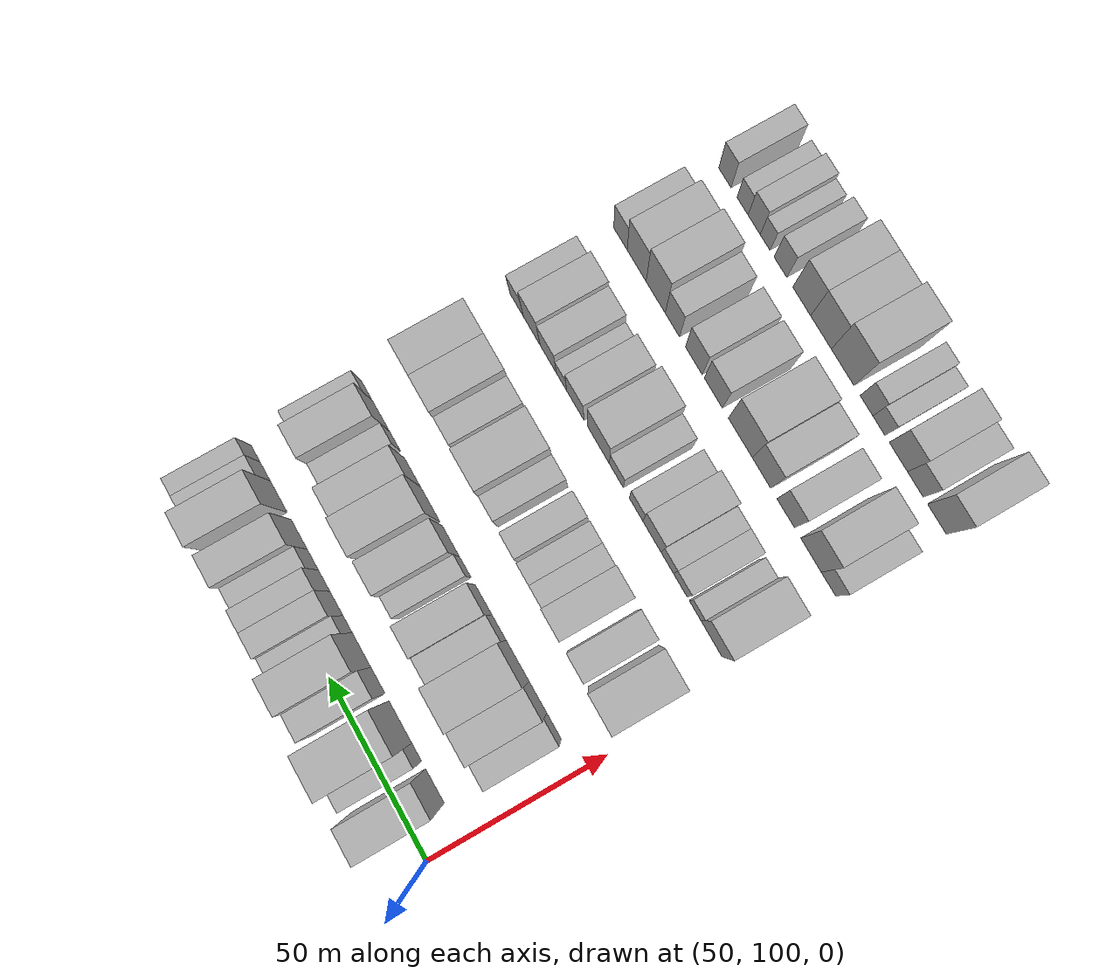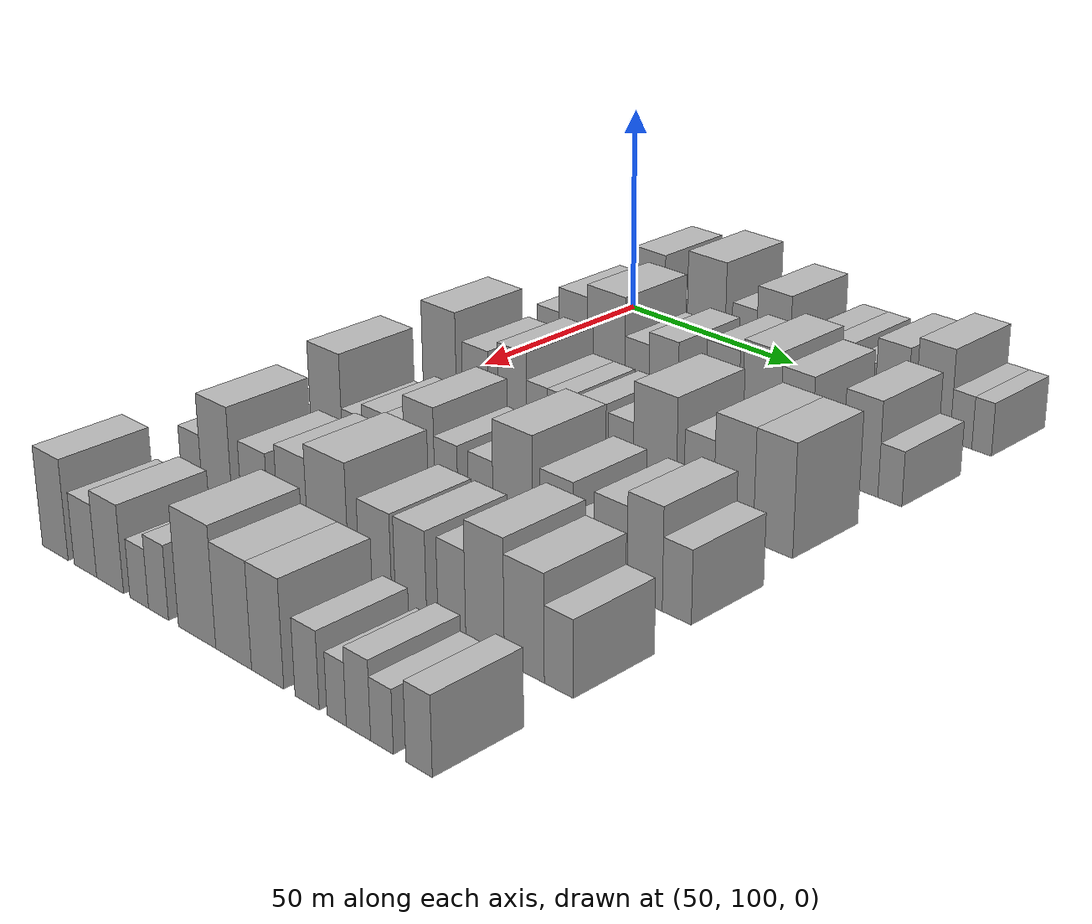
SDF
<sdf version="1.6">
 <world name="default">
  <model name="building_74">
   <static>1</static>
   <pose>50.0000 114.4343 0 0.000000 0.000000 0.000000</pose>
   <link name="link">
    <pose>0 0 10.50 0 0 0</pose>
    <collision name="collision"><geometry><box><size>20.0000 9.3708 21.0000</size></box></geometry></collision>
    <visual name="visual">
     <cast_shadows>0</cast_shadows>
     <geometry><box><size>20.0000 9.3708 21.0000</size></box></geometry>
     <material>
      <script>
       <uri>model://HANNAS_wall/materials/scripts</uri>
       <uri>model://HANNAS_wall/materials/textures</uri>
       <name>vrc/HANNAS_wall</name>
      </script>
     </material>
    </visual>
   </link>
  </model>
  <model name="building_75">
   <static>1</static>
   <pose>50.0000 123.6273 0 0.000000 0.000000 0.000000</pose>
   <link name="link">
    <pose>0 0 6.00 0 0 0</pose>
    <collision name="collision"><geometry><box><size>20.0000 5.0151 12.0000</size></box></geometry></collision>
    <visual name="visual">
     <cast_shadows>0</cast_shadows>
     <geometry><box><size>20.0000 5.0151 12.0000</size></box></geometry>
     <material>
      <script>
       <uri>model://HANNAS_wall/materials/scripts</uri>
       <uri>model://HANNAS_wall/materials/textures</uri>
       <name>vrc/HANNAS_wall</name>
      </script>
     </material>
    </visual>
   </link>
  </model>
  <model name="building_76">
   <static>1</static>
   <pose>50.0000 131.9519 0 0.000000 0.000000 0.000000</pose>
   <link name="link">
    <pose>0 0 12.00 0 0 0</pose>
    <collision name="collision"><geometry><box><size>20.0000 11.6341 24.0000</size></box></geometry></collision>
    <visual name="visual">
     <cast_shadows>0</cast_shadows>
     <geometry><box><size>20.0000 11.6341 24.0000</size></box></geometry>
     <material>
      <script>
       <uri>model://HANNAS_wall/materials/scripts</uri>
       <uri>model://HANNAS_wall/materials/textures</uri>
       <name>vrc/HANNAS_wall</name>
      </script>
     </material>
    </visual>
   </link>
  </model>
  <model name="building_77">
   <static>1</static>
   <pose>50.0000 143.4326 0 0.000000 0.000000 0.000000</pose>
   <link name="link">
    <pose>0 0 7.50 0 0 0</pose>
    <collision name="collision"><geometry><box><size>20.0000 7.3273 15.0000</size></box></geometry></collision>
    <visual name="visual">
     <cast_shadows>0</cast_shadows>
     <geometry><box><size>20.0000 7.3273 15.0000</size></box></geometry>
     <material>
      <script>
       <uri>model://HANNAS_wall/materials/scripts</uri>
       <uri>model://HANNAS_wall/materials/textures</uri>
       <name>vrc/HANNAS_wall</name>
      </script>
     </material>
    </visual>
   </link>
  </model>
  <model name="building_78">
   <static>1</static>
   <pose>50.0000 151.9610 0 0.000000 0.000000 0.000000</pose>
   <link name="link">
    <pose>0 0 10.50 0 0 0</pose>
    <collision name="collision"><geometry><box><size>20.0000 9.7294 21.0000</size></box></geometry></collision>
    <visual name="visual">
     <cast_shadows>0</cast_shadows>
     <geometry><box><size>20.0000 9.7294 21.0000</size></box></geometry>
     <material>
      <script>
       <uri>model://HANNAS_wall/materials/scripts</uri>
       <uri>model://HANNAS_wall/materials/textures</uri>
       <name>vrc/HANNAS_wall</name>
      </script>
     </material>
    </visual>
   </link>
  </model>
  <model name="building_79">
   <static>1</static>
   <pose>50.0000 159.2308 0 0.000000 0.000000 0.000000</pose>
   <link name="link">
    <pose>0 0 6.00 0 0 0</pose>
    <collision name="collision"><geometry><box><size>20.0000 4.8102 12.0000</size></box></geometry></collision>
    <visual name="visual">
     <cast_shadows>0</cast_shadows>
     <geometry><box><size>20.0000 4.8102 12.0000</size></box></geometry>
     <material>
      <script>
       <uri>model://HANNAS_wall/materials/scripts</uri>
       <uri>model://HANNAS_wall/materials/textures</uri>
       <name>vrc/HANNAS_wall</name>
      </script>
     </material>
    </visual>
   </link>
  </model>
  <model name="building_80">
   <static>1</static>
   <pose>50.0000 165.0719 0 0.000000 0.000000 0.000000</pose>
   <link name="link">
    <pose>0 0 7.50 0 0 0</pose>
    <collision name="collision"><geometry><box><size>20.0000 6.8719 15.0000</size></box></geometry></collision>
    <visual name="visual">
     <cast_shadows>0</cast_shadows>
     <geometry><box><size>20.0000 6.8719 15.0000</size></box></geometry>
     <material>
      <script>
       <uri>model://HANNAS_wall/materials/scripts</uri>
       <uri>model://HANNAS_wall/materials/textures</uri>
       <name>vrc/HANNAS_wall</name>
      </script>
     </material>
    </visual>
   </link>
  </model>
  <model name="building_81">
   <static>1</static>
   <pose>50.0000 171.5433 0 0.000000 0.000000 0.000000</pose>
   <link name="link">
    <pose>0 0 7.50 0 0 0</pose>
    <collision name="collision"><geometry><box><size>20.0000 6.0710 15.0000</size></box></geometry></collision>
    <visual name="visual">
     <cast_shadows>0</cast_shadows>
     <geometry><box><size>20.0000 6.0710 15.0000</size></box></geometry>
     <material>
      <script>
       <uri>model://HANNAS_wall/materials/scripts</uri>
       <uri>model://HANNAS_wall/materials/textures</uri>
       <name>vrc/HANNAS_wall</name>
      </script>
     </material>
    </visual>
   </link>
  </model>
  <model name="building_82">
   <static>1</static>
   <pose>50.0000 177.5614 0 0.000000 0.000000 0.000000</pose>
   <link name="link">
    <pose>0 0 6.00 0 0 0</pose>
    <collision name="collision"><geometry><box><size>20.0000 5.9651 12.0000</size></box></geometry></collision>
    <visual name="visual">
     <cast_shadows>0</cast_shadows>
     <geometry><box><size>20.0000 5.9651 12.0000</size></box></geometry>
     <material>
      <script>
       <uri>model://HANNAS_wall/materials/scripts</uri>
       <uri>model://HANNAS_wall/materials/textures</uri>
       <name>vrc/HANNAS_wall</name>
      </script>
     </material>
    </visual>
   </link>
  </model>
  <model name="building_83">
   <static>1</static>
   <pose>50.0000 184.8585 0 0.000000 0.000000 0.000000</pose>
   <link name="link">
    <pose>0 0 9.00 0 0 0</pose>
    <collision name="collision"><geometry><box><size>20.0000 8.6292 18.0000</size></box></geometry></collision>
    <visual name="visual">
     <cast_shadows>0</cast_shadows>
     <geometry><box><size>20.0000 8.6292 18.0000</size></box></geometry>
     <material>
      <script>
       <uri>model://HANNAS_wall/materials/scripts</uri>
       <uri>model://HANNAS_wall/materials/textures</uri>
       <name>vrc/HANNAS_wall</name>
      </script>
     </material>
    </visual>
   </link>
  </model>
  <model name="building_84">
   <static>1</static>
   <pose>50.0000 195.7834 0 0.000000 0.000000 0.000000</pose>
   <link name="link">
    <pose>0 0 10.50 0 0 0</pose>
    <collision name="collision"><geometry><box><size>20.0000 9.2207 21.0000</size></box></geometry></collision>
    <visual name="visual">
     <cast_shadows>0</cast_shadows>
     <geometry><box><size>20.0000 9.2207 21.0000</size></box></geometry>
     <material>
      <script>
       <uri>model://HANNAS_wall/materials/scripts</uri>
       <uri>model://HANNAS_wall/materials/textures</uri>
       <name>vrc/HANNAS_wall</name>
      </script>
     </material>
    </visual>
   </link>
  </model>
  <model name="building_85">
   <static>1</static>
   <pose>50.0000 203.1593 0 0.000000 0.000000 0.000000</pose>
   <link name="link">
    <pose>0 0 6.00 0 0 0</pose>
    <collision name="collision"><geometry><box><size>20.0000 5.5311 12.0000</size></box></geometry></collision>
    <visual name="visual">
     <cast_shadows>0</cast_shadows>
     <geometry><box><size>20.0000 5.5311 12.0000</size></box></geometry>
     <material>
      <script>
       <uri>model://HANNAS_wall/materials/scripts</uri>
       <uri>model://HANNAS_wall/materials/textures</uri>
       <name>vrc/HANNAS_wall</name>
      </script>
     </material>
    </visual>
   </link>
  </model>
  <model name="building_86">
   <static>1</static>
   <pose>50.0000 208.3665 0 0.000000 0.000000 0.000000</pose>
   <link name="link">
    <pose>0 0 6.00 0 0 0</pose>
    <collision name="collision"><geometry><box><size>20.0000 4.8832 12.0000</size></box></geometry></collision>
    <visual name="visual">
     <cast_shadows>0</cast_shadows>
     <geometry><box><size>20.0000 4.8832 12.0000</size></box></geometry>
     <material>
      <script>
       <uri>model://HANNAS_wall/materials/scripts</uri>
       <uri>model://HANNAS_wall/materials/textures</uri>
       <name>vrc/HANNAS_wall</name>
      </script>
     </material>
    </visual>
   </link>
  </model>
  <model name="building_203">
   <static>1</static>
   <pose>82.0000 112.3784 0 0.000000 0.000000 0.000000</pose>
   <link name="link">
    <pose>0 0 7.50 0 0 0</pose>
    <collision name="collision"><geometry><box><size>20.0000 7.1352 15.0000</size></box></geometry></collision>
    <visual name="visual">
     <cast_shadows>0</cast_shadows>
     <geometry><box><size>20.0000 7.1352 15.0000</size></box></geometry>
     <material>
      <script>
       <uri>model://HANNAS_wall/materials/scripts</uri>
       <uri>model://HANNAS_wall/materials/textures</uri>
       <name>vrc/HANNAS_wall</name>
      </script>
     </material>
    </visual>
   </link>
  </model>
  <model name="building_204">
   <static>1</static>
   <pose>82.0000 120.3311 0 0.000000 0.000000 0.000000</pose>
   <link name="link">
    <pose>0 0 10.50 0 0 0</pose>
    <collision name="collision"><geometry><box><size>20.0000 8.7703 21.0000</size></box></geometry></collision>
    <visual name="visual">
     <cast_shadows>0</cast_shadows>
     <geometry><box><size>20.0000 8.7703 21.0000</size></box></geometry>
     <material>
      <script>
       <uri>model://HANNAS_wall/materials/scripts</uri>
       <uri>model://HANNAS_wall/materials/textures</uri>
       <name>vrc/HANNAS_wall</name>
      </script>
     </material>
    </visual>
   </link>
  </model>
  <model name="building_205">
   <static>1</static>
   <pose>82.0000 130.4901 0 0.000000 0.000000 0.000000</pose>
   <link name="link">
    <pose>0 0 12.00 0 0 0</pose>
    <collision name="collision"><geometry><box><size>20.0000 11.5477 24.0000</size></box></geometry></collision>
    <visual name="visual">
     <cast_shadows>0</cast_shadows>
     <geometry><box><size>20.0000 11.5477 24.0000</size></box></geometry>
     <material>
      <script>
       <uri>model://HANNAS_wall/materials/scripts</uri>
       <uri>model://HANNAS_wall/materials/textures</uri>
       <name>vrc/HANNAS_wall</name>
      </script>
     </material>
    </visual>
   </link>
  </model>
  <model name="building_206">
   <static>1</static>
   <pose>82.0000 139.8477 0 0.000000 0.000000 0.000000</pose>
   <link name="link">
    <pose>0 0 7.50 0 0 0</pose>
    <collision name="collision"><geometry><box><size>20.0000 7.1675 15.0000</size></box></geometry></collision>
    <visual name="visual">
     <cast_shadows>0</cast_shadows>
     <geometry><box><size>20.0000 7.1675 15.0000</size></box></geometry>
     <material>
      <script>
       <uri>model://HANNAS_wall/materials/scripts</uri>
       <uri>model://HANNAS_wall/materials/textures</uri>
       <name>vrc/HANNAS_wall</name>
      </script>
     </material>
    </visual>
   </link>
  </model>
  <model name="building_207">
   <static>1</static>
   <pose>82.0000 147.6959 0 0.000000 0.000000 0.000000</pose>
   <link name="link">
    <pose>0 0 9.00 0 0 0</pose>
    <collision name="collision"><geometry><box><size>20.0000 8.5288 18.0000</size></box></geometry></collision>
    <visual name="visual">
     <cast_shadows>0</cast_shadows>
     <geometry><box><size>20.0000 8.5288 18.0000</size></box></geometry>
     <material>
      <script>
       <uri>model://HANNAS_wall/materials/scripts</uri>
       <uri>model://HANNAS_wall/materials/textures</uri>
       <name>vrc/HANNAS_wall</name>
      </script>
     </material>
    </visual>
   </link>
  </model>
  <model name="building_208">
   <static>1</static>
   <pose>82.0000 156.9105 0 0.000000 0.000000 0.000000</pose>
   <link name="link">
    <pose>0 0 6.00 0 0 0</pose>
    <collision name="collision"><geometry><box><size>20.0000 5.9004 12.0000</size></box></geometry></collision>
    <visual name="visual">
     <cast_shadows>0</cast_shadows>
     <geometry><box><size>20.0000 5.9004 12.0000</size></box></geometry>
     <material>
      <script>
       <uri>model://HANNAS_wall/materials/scripts</uri>
       <uri>model://HANNAS_wall/materials/textures</uri>
       <name>vrc/HANNAS_wall</name>
      </script>
     </material>
    </visual>
   </link>
  </model>
  <model name="building_209">
   <static>1</static>
   <pose>82.0000 164.3973 0 0.000000 0.000000 0.000000</pose>
   <link name="link">
    <pose>0 0 10.50 0 0 0</pose>
    <collision name="collision"><geometry><box><size>20.0000 9.0733 21.0000</size></box></geometry></collision>
    <visual name="visual">
     <cast_shadows>0</cast_shadows>
     <geometry><box><size>20.0000 9.0733 21.0000</size></box></geometry>
     <material>
      <script>
       <uri>model://HANNAS_wall/materials/scripts</uri>
       <uri>model://HANNAS_wall/materials/textures</uri>
       <name>vrc/HANNAS_wall</name>
      </script>
     </material>
    </visual>
   </link>
  </model>
  <model name="building_210">
   <static>1</static>
   <pose>82.0000 175.0590 0 0.000000 0.000000 0.000000</pose>
   <link name="link">
    <pose>0 0 12.00 0 0 0</pose>
    <collision name="collision"><geometry><box><size>20.0000 10.2500 24.0000</size></box></geometry></collision>
    <visual name="visual">
     <cast_shadows>0</cast_shadows>
     <geometry><box><size>20.0000 10.2500 24.0000</size></box></geometry>
     <material>
      <script>
       <uri>model://HANNAS_wall/materials/scripts</uri>
       <uri>model://HANNAS_wall/materials/textures</uri>
       <name>vrc/HANNAS_wall</name>
      </script>
     </material>
    </visual>
   </link>
  </model>
  <model name="building_211">
   <static>1</static>
   <pose>82.0000 184.3878 0 0.000000 0.000000 0.000000</pose>
   <link name="link">
    <pose>0 0 10.50 0 0 0</pose>
    <collision name="collision"><geometry><box><size>20.0000 8.4077 21.0000</size></box></geometry></collision>
    <visual name="visual">
     <cast_shadows>0</cast_shadows>
     <geometry><box><size>20.0000 8.4077 21.0000</size></box></geometry>
     <material>
      <script>
       <uri>model://HANNAS_wall/materials/scripts</uri>
       <uri>model://HANNAS_wall/materials/textures</uri>
       <name>vrc/HANNAS_wall</name>
      </script>
     </material>
    </visual>
   </link>
  </model>
  <model name="building_212">
   <static>1</static>
   <pose>82.0000 193.5447 0 0.000000 0.000000 0.000000</pose>
   <link name="link">
    <pose>0 0 6.00 0 0 0</pose>
    <collision name="collision"><geometry><box><size>20.0000 5.9061 12.0000</size></box></geometry></collision>
    <visual name="visual">
     <cast_shadows>0</cast_shadows>
     <geometry><box><size>20.0000 5.9061 12.0000</size></box></geometry>
     <material>
      <script>
       <uri>model://HANNAS_wall/materials/scripts</uri>
       <uri>model://HANNAS_wall/materials/textures</uri>
       <name>vrc/HANNAS_wall</name>
      </script>
     </material>
    </visual>
   </link>
  </model>
  <model name="building_213">
   <static>1</static>
   <pose>82.0000 201.0121 0 0.000000 0.000000 0.000000</pose>
   <link name="link">
    <pose>0 0 10.50 0 0 0</pose>
    <collision name="collision"><geometry><box><size>20.0000 9.0286 21.0000</size></box></geometry></collision>
    <visual name="visual">
     <cast_shadows>0</cast_shadows>
     <geometry><box><size>20.0000 9.0286 21.0000</size></box></geometry>
     <material>
      <script>
       <uri>model://HANNAS_wall/materials/scripts</uri>
       <uri>model://HANNAS_wall/materials/textures</uri>
       <name>vrc/HANNAS_wall</name>
      </script>
     </material>
    </visual>
   </link>
  </model>
  <model name="building_214">
   <static>1</static>
   <pose>82.0000 208.4658 0 0.000000 0.000000 0.000000</pose>
   <link name="link">
    <pose>0 0 6.00 0 0 0</pose>
    <collision name="collision"><geometry><box><size>20.0000 5.8788 12.0000</size></box></geometry></collision>
    <visual name="visual">
     <cast_shadows>0</cast_shadows>
     <geometry><box><size>20.0000 5.8788 12.0000</size></box></geometry>
     <material>
      <script>
       <uri>model://HANNAS_wall/materials/scripts</uri>
       <uri>model://HANNAS_wall/materials/textures</uri>
       <name>vrc/HANNAS_wall</name>
      </script>
     </material>
    </visual>
   </link>
  </model>
  <model name="building_326">
   <static>1</static>
   <pose>114.0000 111.0343 0 0.000000 0.000000 0.000000</pose>
   <link name="link">
    <pose>0 0 12.00 0 0 0</pose>
    <collision name="collision"><geometry><box><size>20.0000 10.7725 24.0000</size></box></geometry></collision>
    <visual name="visual">
     <cast_shadows>0</cast_shadows>
     <geometry><box><size>20.0000 10.7725 24.0000</size></box></geometry>
     <material>
      <script>
       <uri>model://HANNAS_wall/materials/scripts</uri>
       <uri>model://HANNAS_wall/materials/textures</uri>
       <name>vrc/HANNAS_wall</name>
      </script>
     </material>
    </visual>
   </link>
  </model>
  <model name="building_327">
   <static>1</static>
   <pose>114.0000 122.4308 0 0.000000 0.000000 0.000000</pose>
   <link name="link">
    <pose>0 0 9.00 0 0 0</pose>
    <collision name="collision"><geometry><box><size>20.0000 8.0205 18.0000</size></box></geometry></collision>
    <visual name="visual">
     <cast_shadows>0</cast_shadows>
     <geometry><box><size>20.0000 8.0205 18.0000</size></box></geometry>
     <material>
      <script>
       <uri>model://HANNAS_wall/materials/scripts</uri>
       <uri>model://HANNAS_wall/materials/textures</uri>
       <name>vrc/HANNAS_wall</name>
      </script>
     </material>
    </visual>
   </link>
  </model>
  <model name="building_328">
   <static>1</static>
   <pose>114.0000 133.7514 0 0.000000 0.000000 0.000000</pose>
   <link name="link">
    <pose>0 0 10.50 0 0 0</pose>
    <collision name="collision"><geometry><box><size>20.0000 8.6206 21.0000</size></box></geometry></collision>
    <visual name="visual">
     <cast_shadows>0</cast_shadows>
     <geometry><box><size>20.0000 8.6206 21.0000</size></box></geometry>
     <material>
      <script>
       <uri>model://HANNAS_wall/materials/scripts</uri>
       <uri>model://HANNAS_wall/materials/textures</uri>
       <name>vrc/HANNAS_wall</name>
      </script>
     </material>
    </visual>
   </link>
  </model>
  <model name="building_329">
   <static>1</static>
   <pose>114.0000 141.1978 0 0.000000 0.000000 0.000000</pose>
   <link name="link">
    <pose>0 0 7.50 0 0 0</pose>
    <collision name="collision"><geometry><box><size>20.0000 6.2722 15.0000</size></box></geometry></collision>
    <visual name="visual">
     <cast_shadows>0</cast_shadows>
     <geometry><box><size>20.0000 6.2722 15.0000</size></box></geometry>
     <material>
      <script>
       <uri>model://HANNAS_wall/materials/scripts</uri>
       <uri>model://HANNAS_wall/materials/textures</uri>
       <name>vrc/HANNAS_wall</name>
      </script>
     </material>
    </visual>
   </link>
  </model>
  <model name="building_330">
   <static>1</static>
   <pose>114.0000 147.3377 0 0.000000 0.000000 0.000000</pose>
   <link name="link">
    <pose>0 0 7.50 0 0 0</pose>
    <collision name="collision"><geometry><box><size>20.0000 6.0078 15.0000</size></box></geometry></collision>
    <visual name="visual">
     <cast_shadows>0</cast_shadows>
     <geometry><box><size>20.0000 6.0078 15.0000</size></box></geometry>
     <material>
      <script>
       <uri>model://HANNAS_wall/materials/scripts</uri>
       <uri>model://HANNAS_wall/materials/textures</uri>
       <name>vrc/HANNAS_wall</name>
      </script>
     </material>
    </visual>
   </link>
  </model>
  <model name="building_331">
   <static>1</static>
   <pose>114.0000 154.9751 0 0.000000 0.000000 0.000000</pose>
   <link name="link">
    <pose>0 0 7.50 0 0 0</pose>
    <collision name="collision"><geometry><box><size>20.0000 7.2668 15.0000</size></box></geometry></collision>
    <visual name="visual">
     <cast_shadows>0</cast_shadows>
     <geometry><box><size>20.0000 7.2668 15.0000</size></box></geometry>
     <material>
      <script>
       <uri>model://HANNAS_wall/materials/scripts</uri>
       <uri>model://HANNAS_wall/materials/textures</uri>
       <name>vrc/HANNAS_wall</name>
      </script>
     </material>
    </visual>
   </link>
  </model>
  <model name="building_332">
   <static>1</static>
   <pose>114.0000 165.1051 0 0.000000 0.000000 0.000000</pose>
   <link name="link">
    <pose>0 0 7.50 0 0 0</pose>
    <collision name="collision"><geometry><box><size>20.0000 6.9933 15.0000</size></box></geometry></collision>
    <visual name="visual">
     <cast_shadows>0</cast_shadows>
     <geometry><box><size>20.0000 6.9933 15.0000</size></box></geometry>
     <material>
      <script>
       <uri>model://HANNAS_wall/materials/scripts</uri>
       <uri>model://HANNAS_wall/materials/textures</uri>
       <name>vrc/HANNAS_wall</name>
      </script>
     </material>
    </visual>
   </link>
  </model>
  <model name="building_333">
   <static>1</static>
   <pose>114.0000 174.3739 0 0.000000 0.000000 0.000000</pose>
   <link name="link">
    <pose>0 0 12.00 0 0 0</pose>
    <collision name="collision"><geometry><box><size>20.0000 11.5442 24.0000</size></box></geometry></collision>
    <visual name="visual">
     <cast_shadows>0</cast_shadows>
     <geometry><box><size>20.0000 11.5442 24.0000</size></box></geometry>
     <material>
      <script>
       <uri>model://HANNAS_wall/materials/scripts</uri>
       <uri>model://HANNAS_wall/materials/textures</uri>
       <name>vrc/HANNAS_wall</name>
      </script>
     </material>
    </visual>
   </link>
  </model>
  <model name="building_334">
   <static>1</static>
   <pose>114.0000 186.0173 0 0.000000 0.000000 0.000000</pose>
   <link name="link">
    <pose>0 0 9.00 0 0 0</pose>
    <collision name="collision"><geometry><box><size>20.0000 7.7428 18.0000</size></box></geometry></collision>
    <visual name="visual">
     <cast_shadows>0</cast_shadows>
     <geometry><box><size>20.0000 7.7428 18.0000</size></box></geometry>
     <material>
      <script>
       <uri>model://HANNAS_wall/materials/scripts</uri>
       <uri>model://HANNAS_wall/materials/textures</uri>
       <name>vrc/HANNAS_wall</name>
      </script>
     </material>
    </visual>
   </link>
  </model>
  <model name="building_335">
   <static>1</static>
   <pose>114.0000 194.9077 0 0.000000 0.000000 0.000000</pose>
   <link name="link">
    <pose>0 0 12.00 0 0 0</pose>
    <collision name="collision"><geometry><box><size>20.0000 10.0380 24.0000</size></box></geometry></collision>
    <visual name="visual">
     <cast_shadows>0</cast_shadows>
     <geometry><box><size>20.0000 10.0380 24.0000</size></box></geometry>
     <material>
      <script>
       <uri>model://HANNAS_wall/materials/scripts</uri>
       <uri>model://HANNAS_wall/materials/textures</uri>
       <name>vrc/HANNAS_wall</name>
      </script>
     </material>
    </visual>
   </link>
  </model>
  <model name="building_336">
   <static>1</static>
   <pose>114.0000 204.7825 0 0.000000 0.000000 0.000000</pose>
   <link name="link">
    <pose>0 0 12.00 0 0 0</pose>
    <collision name="collision"><geometry><box><size>20.0000 9.7116 24.0000</size></box></geometry></collision>
    <visual name="visual">
     <cast_shadows>0</cast_shadows>
     <geometry><box><size>20.0000 9.7116 24.0000</size></box></geometry>
     <material>
      <script>
       <uri>model://HANNAS_wall/materials/scripts</uri>
       <uri>model://HANNAS_wall/materials/textures</uri>
       <name>vrc/HANNAS_wall</name>
      </script>
     </material>
    </visual>
   </link>
  </model>
  <model name="building_439">
   <static>1</static>
   <pose>146.0000 111.4189 0 0.000000 0.000000 0.000000</pose>
   <link name="link">
    <pose>0 0 12.00 0 0 0</pose>
    <collision name="collision"><geometry><box><size>20.0000 10.1725 24.0000</size></box></geometry></collision>
    <visual name="visual">
     <cast_shadows>0</cast_shadows>
     <geometry><box><size>20.0000 10.1725 24.0000</size></box></geometry>
     <material>
      <script>
       <uri>model://HANNAS_wall/materials/scripts</uri>
       <uri>model://HANNAS_wall/materials/textures</uri>
       <name>vrc/HANNAS_wall</name>
      </script>
     </material>
    </visual>
   </link>
  </model>
  <model name="building_440">
   <static>1</static>
   <pose>146.0000 119.3166 0 0.000000 0.000000 0.000000</pose>
   <link name="link">
    <pose>0 0 6.00 0 0 0</pose>
    <collision name="collision"><geometry><box><size>20.0000 5.6229 12.0000</size></box></geometry></collision>
    <visual name="visual">
     <cast_shadows>0</cast_shadows>
     <geometry><box><size>20.0000 5.6229 12.0000</size></box></geometry>
     <material>
      <script>
       <uri>model://HANNAS_wall/materials/scripts</uri>
       <uri>model://HANNAS_wall/materials/textures</uri>
       <name>vrc/HANNAS_wall</name>
      </script>
     </material>
    </visual>
   </link>
  </model>
  <model name="building_441">
   <static>1</static>
   <pose>146.0000 126.4567 0 0.000000 0.000000 0.000000</pose>
   <link name="link">
    <pose>0 0 7.50 0 0 0</pose>
    <collision name="collision"><geometry><box><size>20.0000 6.6573 15.0000</size></box></geometry></collision>
    <visual name="visual">
     <cast_shadows>0</cast_shadows>
     <geometry><box><size>20.0000 6.6573 15.0000</size></box></geometry>
     <material>
      <script>
       <uri>model://HANNAS_wall/materials/scripts</uri>
       <uri>model://HANNAS_wall/materials/textures</uri>
       <name>vrc/HANNAS_wall</name>
      </script>
     </material>
    </visual>
   </link>
  </model>
  <model name="building_442">
   <static>1</static>
   <pose>146.0000 132.8491 0 0.000000 0.000000 0.000000</pose>
   <link name="link">
    <pose>0 0 7.50 0 0 0</pose>
    <collision name="collision"><geometry><box><size>20.0000 6.1276 15.0000</size></box></geometry></collision>
    <visual name="visual">
     <cast_shadows>0</cast_shadows>
     <geometry><box><size>20.0000 6.1276 15.0000</size></box></geometry>
     <material>
      <script>
       <uri>model://HANNAS_wall/materials/scripts</uri>
       <uri>model://HANNAS_wall/materials/textures</uri>
       <name>vrc/HANNAS_wall</name>
      </script>
     </material>
    </visual>
   </link>
  </model>
  <model name="building_443">
   <static>1</static>
   <pose>146.0000 140.3836 0 0.000000 0.000000 0.000000</pose>
   <link name="link">
    <pose>0 0 10.50 0 0 0</pose>
    <collision name="collision"><geometry><box><size>20.0000 8.9413 21.0000</size></box></geometry></collision>
    <visual name="visual">
     <cast_shadows>0</cast_shadows>
     <geometry><box><size>20.0000 8.9413 21.0000</size></box></geometry>
     <material>
      <script>
       <uri>model://HANNAS_wall/materials/scripts</uri>
       <uri>model://HANNAS_wall/materials/textures</uri>
       <name>vrc/HANNAS_wall</name>
      </script>
     </material>
    </visual>
   </link>
  </model>
  <model name="building_444">
   <static>1</static>
   <pose>146.0000 148.2083 0 0.000000 0.000000 0.000000</pose>
   <link name="link">
    <pose>0 0 7.50 0 0 0</pose>
    <collision name="collision"><geometry><box><size>20.0000 6.7083 15.0000</size></box></geometry></collision>
    <visual name="visual">
     <cast_shadows>0</cast_shadows>
     <geometry><box><size>20.0000 6.7083 15.0000</size></box></geometry>
     <material>
      <script>
       <uri>model://HANNAS_wall/materials/scripts</uri>
       <uri>model://HANNAS_wall/materials/textures</uri>
       <name>vrc/HANNAS_wall</name>
      </script>
     </material>
    </visual>
   </link>
  </model>
  <model name="building_445">
   <static>1</static>
   <pose>146.0000 158.0632 0 0.000000 0.000000 0.000000</pose>
   <link name="link">
    <pose>0 0 7.50 0 0 0</pose>
    <collision name="collision"><geometry><box><size>20.0000 7.0015 15.0000</size></box></geometry></collision>
    <visual name="visual">
     <cast_shadows>0</cast_shadows>
     <geometry><box><size>20.0000 7.0015 15.0000</size></box></geometry>
     <material>
      <script>
       <uri>model://HANNAS_wall/materials/scripts</uri>
       <uri>model://HANNAS_wall/materials/textures</uri>
       <name>vrc/HANNAS_wall</name>
      </script>
     </material>
    </visual>
   </link>
  </model>
  <model name="building_446">
   <static>1</static>
   <pose>146.0000 166.9856 0 0.000000 0.000000 0.000000</pose>
   <link name="link">
    <pose>0 0 12.00 0 0 0</pose>
    <collision name="collision"><geometry><box><size>20.0000 10.8433 24.0000</size></box></geometry></collision>
    <visual name="visual">
     <cast_shadows>0</cast_shadows>
     <geometry><box><size>20.0000 10.8433 24.0000</size></box></geometry>
     <material>
      <script>
       <uri>model://HANNAS_wall/materials/scripts</uri>
       <uri>model://HANNAS_wall/materials/textures</uri>
       <name>vrc/HANNAS_wall</name>
      </script>
     </material>
    </visual>
   </link>
  </model>
  <model name="building_447">
   <static>1</static>
   <pose>146.0000 178.7801 0 0.000000 0.000000 0.000000</pose>
   <link name="link">
    <pose>0 0 9.00 0 0 0</pose>
    <collision name="collision"><geometry><box><size>20.0000 8.7458 18.0000</size></box></geometry></collision>
    <visual name="visual">
     <cast_shadows>0</cast_shadows>
     <geometry><box><size>20.0000 8.7458 18.0000</size></box></geometry>
     <material>
      <script>
       <uri>model://HANNAS_wall/materials/scripts</uri>
       <uri>model://HANNAS_wall/materials/textures</uri>
       <name>vrc/HANNAS_wall</name>
      </script>
     </material>
    </visual>
   </link>
  </model>
  <model name="building_448">
   <static>1</static>
   <pose>146.0000 185.8013 0 0.000000 0.000000 0.000000</pose>
   <link name="link">
    <pose>0 0 6.00 0 0 0</pose>
    <collision name="collision"><geometry><box><size>20.0000 5.2965 12.0000</size></box></geometry></collision>
    <visual name="visual">
     <cast_shadows>0</cast_shadows>
     <geometry><box><size>20.0000 5.2965 12.0000</size></box></geometry>
     <material>
      <script>
       <uri>model://HANNAS_wall/materials/scripts</uri>
       <uri>model://HANNAS_wall/materials/textures</uri>
       <name>vrc/HANNAS_wall</name>
      </script>
     </material>
    </visual>
   </link>
  </model>
  <model name="building_449">
   <static>1</static>
   <pose>146.0000 192.6516 0 0.000000 0.000000 0.000000</pose>
   <link name="link">
    <pose>0 0 9.00 0 0 0</pose>
    <collision name="collision"><geometry><box><size>20.0000 8.4042 18.0000</size></box></geometry></collision>
    <visual name="visual">
     <cast_shadows>0</cast_shadows>
     <geometry><box><size>20.0000 8.4042 18.0000</size></box></geometry>
     <material>
      <script>
       <uri>model://HANNAS_wall/materials/scripts</uri>
       <uri>model://HANNAS_wall/materials/textures</uri>
       <name>vrc/HANNAS_wall</name>
      </script>
     </material>
    </visual>
   </link>
  </model>
  <model name="building_450">
   <static>1</static>
   <pose>146.0000 201.1872 0 0.000000 0.000000 0.000000</pose>
   <link name="link">
    <pose>0 0 10.50 0 0 0</pose>
    <collision name="collision"><geometry><box><size>20.0000 8.6670 21.0000</size></box></geometry></collision>
    <visual name="visual">
     <cast_shadows>0</cast_shadows>
     <geometry><box><size>20.0000 8.6670 21.0000</size></box></geometry>
     <material>
      <script>
       <uri>model://HANNAS_wall/materials/scripts</uri>
       <uri>model://HANNAS_wall/materials/textures</uri>
       <name>vrc/HANNAS_wall</name>
      </script>
     </material>
    </visual>
   </link>
  </model>
  <model name="building_451">
   <static>1</static>
   <pose>146.0000 209.0044 0 0.000000 0.000000 0.000000</pose>
   <link name="link">
    <pose>0 0 7.50 0 0 0</pose>
    <collision name="collision"><geometry><box><size>20.0000 6.9672 15.0000</size></box></geometry></collision>
    <visual name="visual">
     <cast_shadows>0</cast_shadows>
     <geometry><box><size>20.0000 6.9672 15.0000</size></box></geometry>
     <material>
      <script>
       <uri>model://HANNAS_wall/materials/scripts</uri>
       <uri>model://HANNAS_wall/materials/textures</uri>
       <name>vrc/HANNAS_wall</name>
      </script>
     </material>
    </visual>
   </link>
  </model>
  <model name="building_564">
   <static>1</static>
   <pose>178.0000 108.3765 0 0.000000 0.000000 0.000000</pose>
   <link name="link">
    <pose>0 0 7.50 0 0 0</pose>
    <collision name="collision"><geometry><box><size>20.0000 6.7898 15.0000</size></box></geometry></collision>
    <visual name="visual">
     <cast_shadows>0</cast_shadows>
     <geometry><box><size>20.0000 6.7898 15.0000</size></box></geometry>
     <material>
      <script>
       <uri>model://HANNAS_wall/materials/scripts</uri>
       <uri>model://HANNAS_wall/materials/textures</uri>
       <name>vrc/HANNAS_wall</name>
      </script>
     </material>
    </visual>
   </link>
  </model>
  <model name="building_565">
   <static>1</static>
   <pose>178.0000 116.6426 0 0.000000 0.000000 0.000000</pose>
   <link name="link">
    <pose>0 0 12.00 0 0 0</pose>
    <collision name="collision"><geometry><box><size>20.0000 9.7424 24.0000</size></box></geometry></collision>
    <visual name="visual">
     <cast_shadows>0</cast_shadows>
     <geometry><box><size>20.0000 9.7424 24.0000</size></box></geometry>
     <material>
      <script>
       <uri>model://HANNAS_wall/materials/scripts</uri>
       <uri>model://HANNAS_wall/materials/textures</uri>
       <name>vrc/HANNAS_wall</name>
      </script>
     </material>
    </visual>
   </link>
  </model>
  <model name="building_566">
   <static>1</static>
   <pose>178.0000 128.7273 0 0.000000 0.000000 0.000000</pose>
   <link name="link">
    <pose>0 0 9.00 0 0 0</pose>
    <collision name="collision"><geometry><box><size>20.0000 8.4271 18.0000</size></box></geometry></collision>
    <visual name="visual">
     <cast_shadows>0</cast_shadows>
     <geometry><box><size>20.0000 8.4271 18.0000</size></box></geometry>
     <material>
      <script>
       <uri>model://HANNAS_wall/materials/scripts</uri>
       <uri>model://HANNAS_wall/materials/textures</uri>
       <name>vrc/HANNAS_wall</name>
      </script>
     </material>
    </visual>
   </link>
  </model>
  <model name="building_567">
   <static>1</static>
   <pose>178.0000 140.4154 0 0.000000 0.000000 0.000000</pose>
   <link name="link">
    <pose>0 0 10.50 0 0 0</pose>
    <collision name="collision"><geometry><box><size>20.0000 8.9490 21.0000</size></box></geometry></collision>
    <visual name="visual">
     <cast_shadows>0</cast_shadows>
     <geometry><box><size>20.0000 8.9490 21.0000</size></box></geometry>
     <material>
      <script>
       <uri>model://HANNAS_wall/materials/scripts</uri>
       <uri>model://HANNAS_wall/materials/textures</uri>
       <name>vrc/HANNAS_wall</name>
      </script>
     </material>
    </visual>
   </link>
  </model>
  <model name="building_568">
   <static>1</static>
   <pose>178.0000 150.7563 0 0.000000 0.000000 0.000000</pose>
   <link name="link">
    <pose>0 0 12.00 0 0 0</pose>
    <collision name="collision"><geometry><box><size>20.0000 11.7329 24.0000</size></box></geometry></collision>
    <visual name="visual">
     <cast_shadows>0</cast_shadows>
     <geometry><box><size>20.0000 11.7329 24.0000</size></box></geometry>
     <material>
      <script>
       <uri>model://HANNAS_wall/materials/scripts</uri>
       <uri>model://HANNAS_wall/materials/textures</uri>
       <name>vrc/HANNAS_wall</name>
      </script>
     </material>
    </visual>
   </link>
  </model>
  <model name="building_569">
   <static>1</static>
   <pose>178.0000 164.1137 0 0.000000 0.000000 0.000000</pose>
   <link name="link">
    <pose>0 0 9.00 0 0 0</pose>
    <collision name="collision"><geometry><box><size>20.0000 8.9818 18.0000</size></box></geometry></collision>
    <visual name="visual">
     <cast_shadows>0</cast_shadows>
     <geometry><box><size>20.0000 8.9818 18.0000</size></box></geometry>
     <material>
      <script>
       <uri>model://HANNAS_wall/materials/scripts</uri>
       <uri>model://HANNAS_wall/materials/textures</uri>
       <name>vrc/HANNAS_wall</name>
      </script>
     </material>
    </visual>
   </link>
  </model>
  <model name="building_570">
   <static>1</static>
   <pose>178.0000 173.8137 0 0.000000 0.000000 0.000000</pose>
   <link name="link">
    <pose>0 0 9.00 0 0 0</pose>
    <collision name="collision"><geometry><box><size>20.0000 8.4183 18.0000</size></box></geometry></collision>
    <visual name="visual">
     <cast_shadows>0</cast_shadows>
     <geometry><box><size>20.0000 8.4183 18.0000</size></box></geometry>
     <material>
      <script>
       <uri>model://HANNAS_wall/materials/scripts</uri>
       <uri>model://HANNAS_wall/materials/textures</uri>
       <name>vrc/HANNAS_wall</name>
      </script>
     </material>
    </visual>
   </link>
  </model>
  <model name="building_571">
   <static>1</static>
   <pose>178.0000 184.6283 0 0.000000 0.000000 0.000000</pose>
   <link name="link">
    <pose>0 0 9.00 0 0 0</pose>
    <collision name="collision"><geometry><box><size>20.0000 7.2108 18.0000</size></box></geometry></collision>
    <visual name="visual">
     <cast_shadows>0</cast_shadows>
     <geometry><box><size>20.0000 7.2108 18.0000</size></box></geometry>
     <material>
      <script>
       <uri>model://HANNAS_wall/materials/scripts</uri>
       <uri>model://HANNAS_wall/materials/textures</uri>
       <name>vrc/HANNAS_wall</name>
      </script>
     </material>
    </visual>
   </link>
  </model>
  <model name="building_572">
   <static>1</static>
   <pose>178.0000 193.1010 0 0.000000 0.000000 0.000000</pose>
   <link name="link">
    <pose>0 0 12.00 0 0 0</pose>
    <collision name="collision"><geometry><box><size>20.0000 9.7346 24.0000</size></box></geometry></collision>
    <visual name="visual">
     <cast_shadows>0</cast_shadows>
     <geometry><box><size>20.0000 9.7346 24.0000</size></box></geometry>
     <material>
      <script>
       <uri>model://HANNAS_wall/materials/scripts</uri>
       <uri>model://HANNAS_wall/materials/textures</uri>
       <name>vrc/HANNAS_wall</name>
      </script>
     </material>
    </visual>
   </link>
  </model>
  <model name="building_573">
   <static>1</static>
   <pose>178.0000 202.8279 0 0.000000 0.000000 0.000000</pose>
   <link name="link">
    <pose>0 0 10.50 0 0 0</pose>
    <collision name="collision"><geometry><box><size>20.0000 9.7192 21.0000</size></box></geometry></collision>
    <visual name="visual">
     <cast_shadows>0</cast_shadows>
     <geometry><box><size>20.0000 9.7192 21.0000</size></box></geometry>
     <material>
      <script>
       <uri>model://HANNAS_wall/materials/scripts</uri>
       <uri>model://HANNAS_wall/materials/textures</uri>
       <name>vrc/HANNAS_wall</name>
      </script>
     </material>
    </visual>
   </link>
  </model>
  <model name="building_574">
   <static>1</static>
   <pose>178.0000 211.1331 0 0.000000 0.000000 0.000000</pose>
   <link name="link">
    <pose>0 0 7.50 0 0 0</pose>
    <collision name="collision"><geometry><box><size>20.0000 6.8911 15.0000</size></box></geometry></collision>
    <visual name="visual">
     <cast_shadows>0</cast_shadows>
     <geometry><box><size>20.0000 6.8911 15.0000</size></box></geometry>
     <material>
      <script>
       <uri>model://HANNAS_wall/materials/scripts</uri>
       <uri>model://HANNAS_wall/materials/textures</uri>
       <name>vrc/HANNAS_wall</name>
      </script>
     </material>
    </visual>
   </link>
  </model>
  <model name="building_689">
   <static>1</static>
   <pose>210.0000 108.5736 0 0.000000 0.000000 0.000000</pose>
   <link name="link">
    <pose>0 0 10.50 0 0 0</pose>
    <collision name="collision"><geometry><box><size>20.0000 8.7100 21.0000</size></box></geometry></collision>
    <visual name="visual">
     <cast_shadows>0</cast_shadows>
     <geometry><box><size>20.0000 8.7100 21.0000</size></box></geometry>
     <material>
      <script>
       <uri>model://HANNAS_wall/materials/scripts</uri>
       <uri>model://HANNAS_wall/materials/textures</uri>
       <name>vrc/HANNAS_wall</name>
      </script>
     </material>
    </visual>
   </link>
  </model>
  <model name="building_690">
   <static>1</static>
   <pose>210.0000 118.6486 0 0.000000 0.000000 0.000000</pose>
   <link name="link">
    <pose>0 0 7.50 0 0 0</pose>
    <collision name="collision"><geometry><box><size>20.0000 7.4399 15.0000</size></box></geometry></collision>
    <visual name="visual">
     <cast_shadows>0</cast_shadows>
     <geometry><box><size>20.0000 7.4399 15.0000</size></box></geometry>
     <material>
      <script>
       <uri>model://HANNAS_wall/materials/scripts</uri>
       <uri>model://HANNAS_wall/materials/textures</uri>
       <name>vrc/HANNAS_wall</name>
      </script>
     </material>
    </visual>
   </link>
  </model>
  <model name="building_691">
   <static>1</static>
   <pose>210.0000 126.6914 0 0.000000 0.000000 0.000000</pose>
   <link name="link">
    <pose>0 0 9.00 0 0 0</pose>
    <collision name="collision"><geometry><box><size>20.0000 8.6457 18.0000</size></box></geometry></collision>
    <visual name="visual">
     <cast_shadows>0</cast_shadows>
     <geometry><box><size>20.0000 8.6457 18.0000</size></box></geometry>
     <material>
      <script>
       <uri>model://HANNAS_wall/materials/scripts</uri>
       <uri>model://HANNAS_wall/materials/textures</uri>
       <name>vrc/HANNAS_wall</name>
      </script>
     </material>
    </visual>
   </link>
  </model>
  <model name="building_692">
   <static>1</static>
   <pose>210.0000 135.9129 0 0.000000 0.000000 0.000000</pose>
   <link name="link">
    <pose>0 0 6.00 0 0 0</pose>
    <collision name="collision"><geometry><box><size>20.0000 5.7972 12.0000</size></box></geometry></collision>
    <visual name="visual">
     <cast_shadows>0</cast_shadows>
     <geometry><box><size>20.0000 5.7972 12.0000</size></box></geometry>
     <material>
      <script>
       <uri>model://HANNAS_wall/materials/scripts</uri>
       <uri>model://HANNAS_wall/materials/textures</uri>
       <name>vrc/HANNAS_wall</name>
      </script>
     </material>
    </visual>
   </link>
  </model>
  <model name="building_693">
   <static>1</static>
   <pose>210.0000 141.8581 0 0.000000 0.000000 0.000000</pose>
   <link name="link">
    <pose>0 0 7.50 0 0 0</pose>
    <collision name="collision"><geometry><box><size>20.0000 6.0934 15.0000</size></box></geometry></collision>
    <visual name="visual">
     <cast_shadows>0</cast_shadows>
     <geometry><box><size>20.0000 6.0934 15.0000</size></box></geometry>
     <material>
      <script>
       <uri>model://HANNAS_wall/materials/scripts</uri>
       <uri>model://HANNAS_wall/materials/textures</uri>
       <name>vrc/HANNAS_wall</name>
      </script>
     </material>
    </visual>
   </link>
  </model>
  <model name="building_694">
   <static>1</static>
   <pose>210.0000 153.3884 0 0.000000 0.000000 0.000000</pose>
   <link name="link">
    <pose>0 0 12.00 0 0 0</pose>
    <collision name="collision"><geometry><box><size>20.0000 10.9671 24.0000</size></box></geometry></collision>
    <visual name="visual">
     <cast_shadows>0</cast_shadows>
     <geometry><box><size>20.0000 10.9671 24.0000</size></box></geometry>
     <material>
      <script>
       <uri>model://HANNAS_wall/materials/scripts</uri>
       <uri>model://HANNAS_wall/materials/textures</uri>
       <name>vrc/HANNAS_wall</name>
      </script>
     </material>
    </visual>
   </link>
  </model>
  <model name="building_695">
   <static>1</static>
   <pose>210.0000 163.9296 0 0.000000 0.000000 0.000000</pose>
   <link name="link">
    <pose>0 0 10.50 0 0 0</pose>
    <collision name="collision"><geometry><box><size>20.0000 10.1153 21.0000</size></box></geometry></collision>
    <visual name="visual">
     <cast_shadows>0</cast_shadows>
     <geometry><box><size>20.0000 10.1153 21.0000</size></box></geometry>
     <material>
      <script>
       <uri>model://HANNAS_wall/materials/scripts</uri>
       <uri>model://HANNAS_wall/materials/textures</uri>
       <name>vrc/HANNAS_wall</name>
      </script>
     </material>
    </visual>
   </link>
  </model>
  <model name="building_696">
   <static>1</static>
   <pose>210.0000 173.3793 0 0.000000 0.000000 0.000000</pose>
   <link name="link">
    <pose>0 0 10.50 0 0 0</pose>
    <collision name="collision"><geometry><box><size>20.0000 8.7840 21.0000</size></box></geometry></collision>
    <visual name="visual">
     <cast_shadows>0</cast_shadows>
     <geometry><box><size>20.0000 8.7840 21.0000</size></box></geometry>
     <material>
      <script>
       <uri>model://HANNAS_wall/materials/scripts</uri>
       <uri>model://HANNAS_wall/materials/textures</uri>
       <name>vrc/HANNAS_wall</name>
      </script>
     </material>
    </visual>
   </link>
  </model>
  <model name="building_697">
   <static>1</static>
   <pose>210.0000 183.9566 0 0.000000 0.000000 0.000000</pose>
   <link name="link">
    <pose>0 0 7.50 0 0 0</pose>
    <collision name="collision"><geometry><box><size>20.0000 6.3706 15.0000</size></box></geometry></collision>
    <visual name="visual">
     <cast_shadows>0</cast_shadows>
     <geometry><box><size>20.0000 6.3706 15.0000</size></box></geometry>
     <material>
      <script>
       <uri>model://HANNAS_wall/materials/scripts</uri>
       <uri>model://HANNAS_wall/materials/textures</uri>
       <name>vrc/HANNAS_wall</name>
      </script>
     </material>
    </visual>
   </link>
  </model>
  <model name="building_698">
   <static>1</static>
   <pose>210.0000 191.6092 0 0.000000 0.000000 0.000000</pose>
   <link name="link">
    <pose>0 0 6.00 0 0 0</pose>
    <collision name="collision"><geometry><box><size>20.0000 4.9346 12.0000</size></box></geometry></collision>
    <visual name="visual">
     <cast_shadows>0</cast_shadows>
     <geometry><box><size>20.0000 4.9346 12.0000</size></box></geometry>
     <material>
      <script>
       <uri>model://HANNAS_wall/materials/scripts</uri>
       <uri>model://HANNAS_wall/materials/textures</uri>
       <name>vrc/HANNAS_wall</name>
      </script>
     </material>
    </visual>
   </link>
  </model>
  <model name="building_699">
   <static>1</static>
   <pose>210.0000 197.1273 0 0.000000 0.000000 0.000000</pose>
   <link name="link">
    <pose>0 0 7.50 0 0 0</pose>
    <collision name="collision"><geometry><box><size>20.0000 6.1016 15.0000</size></box></geometry></collision>
    <visual name="visual">
     <cast_shadows>0</cast_shadows>
     <geometry><box><size>20.0000 6.1016 15.0000</size></box></geometry>
     <material>
      <script>
       <uri>model://HANNAS_wall/materials/scripts</uri>
       <uri>model://HANNAS_wall/materials/textures</uri>
       <name>vrc/HANNAS_wall</name>
      </script>
     </material>
    </visual>
   </link>
  </model>
  <model name="building_700">
   <static>1</static>
   <pose>210.0000 202.9526 0 0.000000 0.000000 0.000000</pose>
   <link name="link">
    <pose>0 0 6.00 0 0 0</pose>
    <collision name="collision"><geometry><box><size>20.0000 5.5490 12.0000</size></box></geometry></collision>
    <visual name="visual">
     <cast_shadows>0</cast_shadows>
     <geometry><box><size>20.0000 5.5490 12.0000</size></box></geometry>
     <material>
      <script>
       <uri>model://HANNAS_wall/materials/scripts</uri>
       <uri>model://HANNAS_wall/materials/textures</uri>
       <name>vrc/HANNAS_wall</name>
      </script>
     </material>
    </visual>
   </link>
  </model>
  <model name="building_701">
   <static>1</static>
   <pose>210.0000 211.8576 0 0.000000 0.000000 0.000000</pose>
   <link name="link">
    <pose>0 0 7.50 0 0 0</pose>
    <collision name="collision"><geometry><box><size>20.0000 6.2610 15.0000</size></box></geometry></collision>
    <visual name="visual">
     <cast_shadows>0</cast_shadows>
     <geometry><box><size>20.0000 6.2610 15.0000</size></box></geometry>
     <material>
      <script>
       <uri>model://HANNAS_wall/materials/scripts</uri>
       <uri>model://HANNAS_wall/materials/textures</uri>
       <name>vrc/HANNAS_wall</name>
      </script>
     </material>
    </visual>
   </link>
  </model>
 </world>
</sdf>
